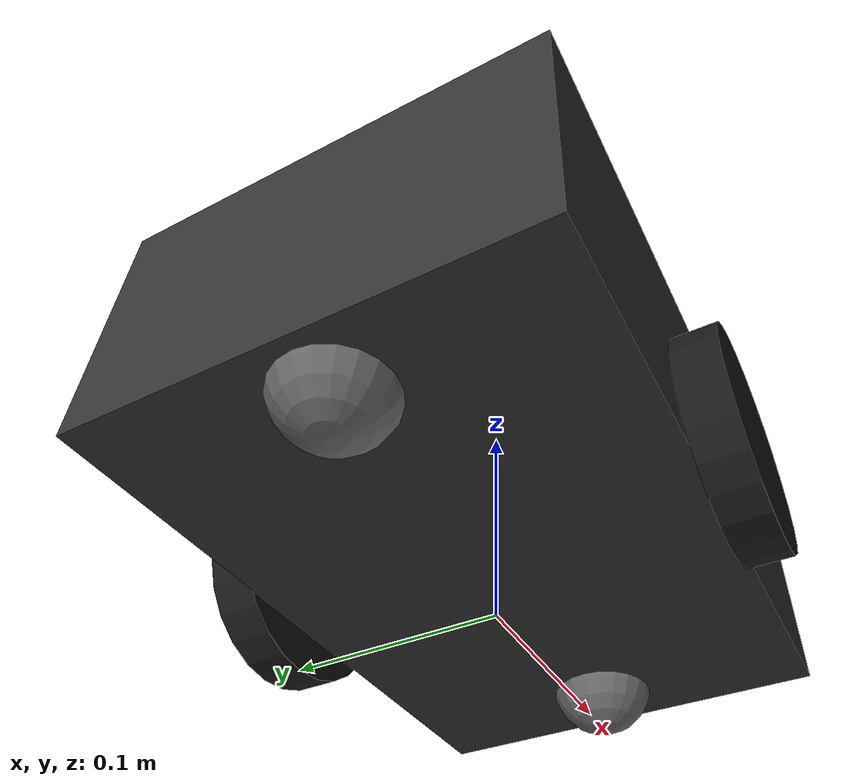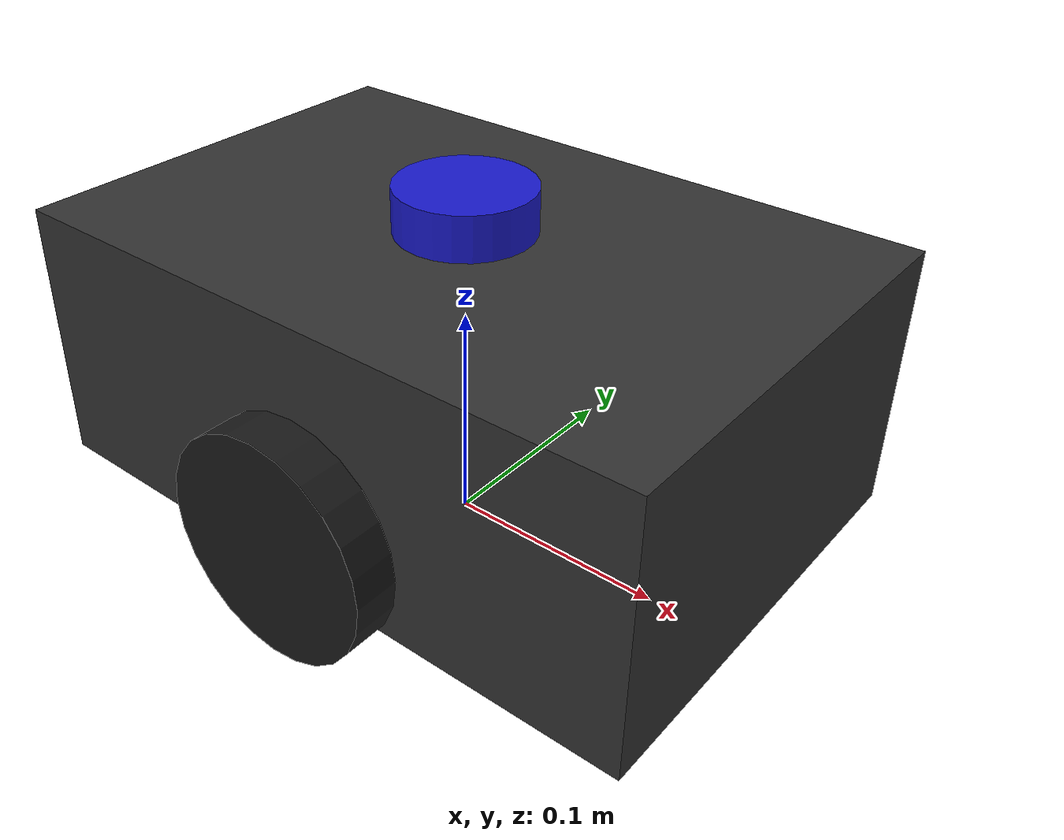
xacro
<?xml version="1.0"?>
<robot name="diffbot" xmlns:xacro="http://www.ros.org/wiki/xacro">

    <xacro:property name="base_link_length" value="0.30"/>
    <xacro:property name="base_link_width" value="0.20"/>
    <xacro:property name="base_link_height" value="0.12"/>
    <xacro:property name="wheel_radius" value="0.05"/>
    <xacro:property name="wheel_thickness" value="0.02"/>
    <xacro:property name="axle_offset" value="0.0"/>
    <xacro:property name="mass_body" value="2.0"/>
    <xacro:property name="mass_wheel" value="0.1"/>

    <xacro:property name="cam_offset_x" value="0.12"/>
    <xacro:property name="cam_offset_z" value="0.08"/>
    <xacro:property name="cam_tilt" value="0.15"/>

    <link name="base_link">
    <visual>
        <origin xyz="0 0 0.08" rpy="0 0 0"/>
        <geometry>
            <box size="0.30 0.20 0.12"/>
        </geometry>
        <material name="body_color">
            <color rgba="0.2 0.2 0.2 1"/>   <!-- 深灰色，不透明 -->
        </material>
    </visual>
    <collision>
        <origin xyz="0 0 0.08" rpy="0 0 0"/>
        <geometry>
            <box size="0.30 0.20 0.12"/>
        </geometry>
    </collision>
    <inertial>
        <origin xyz="0 0 0.08" rpy="0 0 0"/>
        <mass value="2.0"/>
        <inertia ixx="0.01" iyy="0.01" izz="0.01" ixy="0.0" iyz="0.0" ixz="0.0"/>
    </inertial>
    </link>

      <!-- ========== 轮子宏 ========== -->
  <xacro:macro name="wheel" params="name y">
    <link name="${name}_wheel_link">
      <visual>
        <origin xyz="0 0 0" rpy="1.5707 0 0"/>
        <geometry>
          <cylinder radius="${wheel_radius}" length="${wheel_thickness}"/>
        </geometry>
        <material name="wheel_color">
          <color rgba="0.1 0.1 0.1 1"/>
        </material>
      </visual>
      <collision>
        <origin xyz="0 0 0" rpy="1.5707 0 0"/>
        <geometry>
          <cylinder radius="${wheel_radius}" length="${wheel_thickness}"/>
        </geometry>
      </collision>
      <inertial>
        <origin xyz="0 0 0"/>
        <mass value="${mass_wheel}"/>
        <inertia ixx="0.0001" ixy="0.0" ixz="0.0"
                 iyy="0.0001" iyz="0.0"
                 izz="0.0001"/>
      </inertial>
    </link>

    <joint name="${name}_wheel_joint" type="continuous">
      <origin xyz="${axle_offset} ${y} ${wheel_radius}" rpy="0 0 0"/>
      <parent link="base_link"/>
      <child link="${name}_wheel_link"/>
      <axis xyz = "0 1 0" />
      <dynamics damping="0.05" friction="0.01"/>
    </joint>

    <gazebo reference="${name}_wheel_link">
      <mu1>1.0</mu1>
      <mu2>1.0</mu2>
      <fdir1>1 0 0</fdir1>
      <kp>1000000.0</kp>
      <kd>100.0</kd>
      <minDepth>0.001</minDepth>
      <maxVel>1.0</maxVel>
    </gazebo>
  </xacro:macro>

  <!-- 左轮 y 为正、右轮 y 为负（ROS 右手系：x 前，y 左，z 上） -->
  <xacro:wheel name="left"  y="0.11"/>
  <xacro:wheel name="right" y="-0.11"/>

  <!-- ========== 前支撑轮 ========== -->
  <link name="front_caster_link">
    <visual>
      <geometry>
        <sphere radius="0.025"/>
      </geometry>
      <material name="caster_color">
        <color rgba="0.4 0.4 0.4 1"/>
      </material>
    </visual>
    <collision>
      <geometry>
        <sphere radius="0.025"/>
      </geometry>
    </collision>
    <inertial>
      <mass value="0.05"/>
      <inertia ixx="0.00001" ixy="0.0" ixz="0.0"
               iyy="0.00001" iyz="0.0"
               izz="0.00001"/>
    </inertial>
  </link>

  <joint name="front_caster_joint" type="fixed">
    <origin xyz="0.12 0 0.025"/>
    <parent link="base_link"/>
    <child link="front_caster_link"/>
  </joint>

  <gazebo reference="front_caster_link">
    <mu1>0.1</mu1>
    <mu2>0.1</mu2>
  </gazebo>

    <!-- ========== 后支撑轮 ========== -->
  <link name="back_caster_link">
    <visual>
      <geometry>
        <sphere radius="0.025"/>
      </geometry>
      <material name="caster_color">
        <color rgba="0.4 0.4 0.4 1"/>
      </material>
    </visual>
    <collision>
      <geometry>
        <sphere radius="0.025"/>
      </geometry>
    </collision>
    <inertial>
      <mass value="0.05"/>
      <inertia ixx="0.00001" ixy="0.0" ixz="0.0"
               iyy="0.00001" iyz="0.0"
               izz="0.00001"/>
    </inertial>
  </link>

  <joint name="back_caster_joint" type="fixed">
    <origin xyz="-0.12 0 0.025"/>
    <parent link="base_link"/>
    <child link="back_caster_link"/>
  </joint>

  <gazebo reference="back_caster_link">
    <mu1>0.1</mu1>
    <mu2>0.1</mu2>
  </gazebo>

    <!-- ========== 摄像头 ========== -->
  <link name="camera_link">
    <visual>
      <geometry>
        <box size="0.03 0.03 0.03"/>
      </geometry>
      <material name="camera_color">
        <color rgba="0.8 0.2 0.2 1"/>
      </material>
    </visual>
    <collision>
      <geometry>
        <box size="0.03 0.03 0.03"/>
      </geometry>
    </collision>
    <inertial>
      <mass value="0.05"/>
      <inertia ixx="0.00001" ixy="0.0" ixz="0.0"
               iyy="0.00001" iyz="0.0"
               izz="0.00001"/>
    </inertial>
  </link>

  <joint name="camera_joint" type="fixed">
    <origin xyz="${cam_offset_x} 0 ${cam_offset_z}" rpy="0 ${cam_tilt} 0"/>
    <parent link="base_link"/>
    <child link="camera_link"/>
  </joint>

  <!-- 光学坐标系：与 camera_link 位置相同，只旋转坐标轴 -->
  <link name="camera_link_optical"/>

  <joint name="camera_optical_joint" type="fixed">
    <origin xyz="0 0 0" rpy="-1.5707 0 -1.5707"/>
    <parent link="camera_link"/>
    <child link="camera_link_optical"/>
  </joint>

  <!-- ========== Gazebo Sim 相机传感器 ========== -->
  <!-- 图像由 ros_gz_bridge 桥接到 ROS 2 的 /camera/image_raw -->
  <gazebo reference="camera_link">
    <sensor name="camera" type="camera">
      <update_rate>15</update_rate>
      <always_on>true</always_on>
      <visualize>true</visualize>
      <topic>/camera/image_raw</topic>
      <gz_frame_id>camera_link_optical</gz_frame_id>
      <camera>
        <horizontal_fov>1.047</horizontal_fov>
        <image>
          <width>320</width>
          <height>240</height>
          <format>R8G8B8</format>
        </image>
        <clip>
          <near>0.05</near>
          <far>10.0</far>
        </clip>
      </camera>
    </sensor>
  </gazebo>

  <!-- ========== 激光雷达 ========== -->
  <link name="lidar_link">
    <visual>
      <geometry>
        <cylinder radius="0.03" length="0.02"/>
      </geometry>
      <material name="lidar_color">
        <color rgba="0.1 0.1 0.8 1"/>
      </material>
    </visual>
    <collision>
      <geometry>
        <cylinder radius="0.03" length="0.02"/>
      </geometry>
    </collision>
    <inertial>
      <mass value="0.05"/>
      <inertia ixx="0.00001" ixy="0.0" ixz="0.0"
               iyy="0.00001" iyz="0.0"
               izz="0.00001"/>
    </inertial>
  </link>

  <joint name="lidar_joint" type="fixed">
    <origin xyz="0 0 0.15" rpy="0 0 0"/>
    <parent link="base_link"/>
    <child link="lidar_link"/>
  </joint>

  <!-- ========== Gazebo Sim 激光雷达传感器 ========== -->
  <!-- 扫描数据由 ros_gz_bridge 桥接到 ROS 2 的 /scan -->
  <gazebo reference="lidar_link">
    <sensor name="lidar" type="gpu_lidar">
      <update_rate>10</update_rate>
      <always_on>true</always_on>
      <visualize>true</visualize>
      <topic>/scan</topic>
      <gz_frame_id>lidar_link</gz_frame_id>
      <ray>
        <scan>
          <horizontal>
            <samples>360</samples>
            <resolution>1</resolution>
            <min_angle>-3.14159</min_angle>
            <max_angle>3.14159</max_angle>
          </horizontal>
        </scan>
        <range>
          <min>0.10</min>
          <max>8.0</max>
          <resolution>0.01</resolution>
        </range>
      </ray>
    </sensor>
  </gazebo>

    <!-- ========== Gazebo Sim 差速驱动系统插件 ========== -->
    <!-- 命令/里程计/TF 由 ros_gz_bridge 与 ROS 2 的 /cmd_vel、/odom、/tf 桥接 -->
    <gazebo>
      <plugin name="gz::sim::systems::DiffDrive" filename="gz-sim-diff-drive-system">
        <left_joint>left_wheel_joint</left_joint>
        <right_joint>right_wheel_joint</right_joint>

        <wheel_separation>0.22</wheel_separation>
        <wheel_radius>0.05</wheel_radius>

        <max_linear_velocity>0.2</max_linear_velocity>
        <max_angular_velocity>0.8</max_angular_velocity>
        <max_linear_acceleration>0.25</max_linear_acceleration>
        <max_angular_acceleration>2.2</max_angular_acceleration>

        <topic>/cmd_vel</topic>
        <odom_topic>/odom</odom_topic>
        <tf_topic>/tf</tf_topic>
        <frame_id>odom</frame_id>
        <child_frame_id>base_link</child_frame_id>
        <odom_publish_frequency>30</odom_publish_frequency>
      </plugin>
    </gazebo>

</robot>
